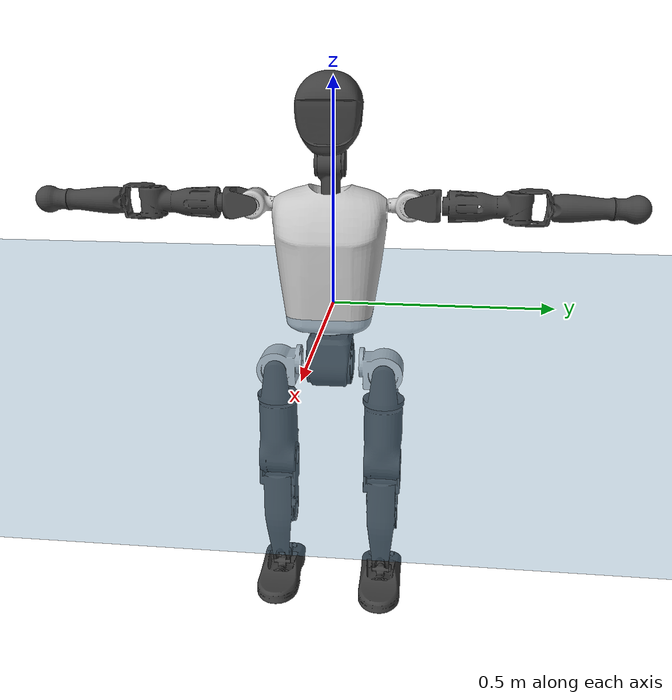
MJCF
<mujoco model="T1">
  <compiler angle="radian" assetdir="assets" balanceinertia="true" inertiafromgeom="false"/>

  <option timestep="0.005" density="1.2" viscosity="2e-05"/>

  <size nkey="1"/>

  <visual>
    <quality shadowsize="8192"/>
    <map shadowclip="0.5"/>
  </visual>

  <default>
    <default class="/">
      <joint armature="0.01" damping="0.01" frictionloss="0.1"/>
      <geom contype="0" conaffinity="0" group="1" solref="-1000 -80"/>
      <site size="0.01 0.005 0.005" group="5"/>
      <general forcelimited="true" biastype="affine" gainprm="25" biasprm="0 -25 -0.6"/>
      <default class="t1">
        <geom rgba="0.25 0.25 0.25 1"/>
        <default class="visual">
          <geom type="mesh" group="2"/>
        </default>
        <default class="collision">
          <geom group="3"/>
        </default>
        <default class="foot">
          <geom size="0.1115 0.05 0.015" type="box" condim="6" group="4" priority="1" solimp="0.015 1 0.015"/>
        </default>
        <default class="reward_collision_sphere">
          <geom group="5" rgba="1 0 0 1"/>
        </default>
      </default>
    </default>
  </default>

  <asset>
    <texture type="skybox" colorspace="auto" name="//unnamed_texture_0" builtin="gradient" rgb1="0.95 0.95 0.95" rgb2="0.95 0.95 0.95" width="100" height="600"/>
    <texture type="2d" colorspace="auto" name="texplane" builtin="checker" rgb1="0.345 0.575 0.748" rgb2="0.345 0.575 0.748" markrgb="1 1 1" width="512" height="512"/>
    <material name="MatPlane" class="/" texture="texplane" texuniform="true" texrepeat="2 2" specular="0.9"/>
    <mesh name="Trunk" class="/" file="Trunk.stl"/>
    <mesh name="H1" class="/" file="H1.stl"/>
    <mesh name="H2" class="/" file="H2.stl"/>
    <mesh name="AL1" class="/" file="AL1.stl"/>
    <mesh name="AL2" class="/" file="AL2.stl"/>
    <mesh name="AL3" class="/" file="AL3.stl"/>
    <mesh name="left_hand_link" class="/" file="left_hand_link.stl"/>
    <mesh name="AR1" class="/" file="AR1.stl"/>
    <mesh name="AR2" class="/" file="AR2.stl"/>
    <mesh name="AR3" class="/" file="AR3.stl"/>
    <mesh name="right_hand_link" class="/" file="right_hand_link.stl"/>
    <mesh name="Waist" class="/" file="Waist.stl"/>
    <mesh name="Hip_Pitch_Left" class="/" file="Hip_Pitch_Left.stl"/>
    <mesh name="Hip_Roll_Left" class="/" file="Hip_Roll_Left.stl"/>
    <mesh name="Hip_Yaw_Left" class="/" file="Hip_Yaw_Left.stl"/>
    <mesh name="Shank_Left" class="/" file="Shank_Left.stl"/>
    <mesh name="Ankle_Cross_Left" class="/" file="Ankle_Cross_Left.stl"/>
    <mesh name="left_foot_link" class="/" file="left_foot_link.stl"/>
    <mesh name="Hip_Pitch_Right" class="/" file="Hip_Pitch_Right.stl"/>
    <mesh name="Hip_Roll_Right" class="/" file="Hip_Roll_Right.stl"/>
    <mesh name="Hip_Yaw_Right" class="/" file="Hip_Yaw_Right.stl"/>
    <mesh name="Shank_Right" class="/" file="Shank_Right.stl"/>
    <mesh name="Ankle_Cross_Right" class="/" file="Ankle_Cross_Right.stl"/>
    <mesh name="right_foot_link" class="/" file="right_foot_link.stl"/>
  </asset>

  <worldbody>
    <geom name="floor" class="/" size="100 100 0.125" type="plane" group="0" material="MatPlane"/>
    <light name="toplight_shadow" class="/" pos="0 0 5" dir="0.0990148 0.0990148 -0.990148" type="directional" ambient="0.04 0.04 0.04" diffuse="0.55 0.55 0.55" specular="0.12 0.12 0.12"/>
    <light name="toplight_fill" class="/" pos="0 0 5" dir="0.0990148 0.0990148 -0.990148" type="directional" castshadow="false" ambient="0.04 0.04 0.04" diffuse="0.3 0.3 0.3" specular="0.08 0.08 0.08"/>
    <body name="trunk" childclass="t1" pos="-6.26089e-05 0.000410123 0.000204481" quat="1 1.06377e-05 -2.9633e-05 -2.2327e-06">
      <inertial pos="0.0405902 0.000510724 0.112201" quat="0.999932 0.00353553 -0.0111236 7.26303e-05" mass="11.6997" diaginertia="0.0233762 0.168308 0.0764407"/>
      <joint name="//unnamed_joint_0" type="free" armature="0" damping="0" frictionloss="0"/>
      <geom name="//unnamed_geom_1" class="visual" rgba="0.76 0.76 0.76 1" mesh="Trunk"/>
      <geom name="//unnamed_geom_2" class="collision" size="0.0747349 0.0996465 0.14947" pos="0.0455443 0 0.127654" type="box"/>
      <geom name="//unnamed_geom_3" class="reward_collision_sphere" size="0.114594" pos="0.0455443 0 0.106378"/>
      <geom name="//unnamed_geom_4" class="reward_collision_sphere" size="0.014947" pos="0.0455443 0.0991562 0"/>
      <geom name="//unnamed_geom_5" class="reward_collision_sphere" size="0.014947" pos="0.0455443 -0.0991562 0"/>
      <geom name="//unnamed_geom_6" class="reward_collision_sphere" size="0.014947" pos="0.0455443 0.12482 0.191481"/>
      <geom name="//unnamed_geom_7" class="reward_collision_sphere" size="0.014947" pos="0.0455443 -0.12482 0.191481"/>
      <site name="imu" pos="0.0046541 0.00418638 0.00125591" size="0.00996465"/>
      <camera name="track" pos="0 -2.33309 0" quat="0.707107 0.707107 0 0" mode="trackcom"/>
      <camera name="ego_camera" pos="0.0926067 0 0.446788" quat="-0.5 -0.5 0.5 0.5"/>
      <body name="H1" pos="0.047582 -0.000398651 0.258106" quat="1 -2.1019e-06 -6.59959e-06 -2.14928e-06">
        <inertial pos="-0.00124313 -0.000689257 0.0605739" quat="0.764063 -0.013849 0.00223449 0.644989" mass="0.443605" diaginertia="6.08051e-05 0.000486738 0.000205753"/>
        <joint name="AAHead_yaw" pos="0 0 0" axis="-0.0030392 0.000878583 0.999995" stiffness="0.00164983" range="-1.57136 1.5617" armature="0.0101075" damping="0.00740739" frictionloss="0.0929015"/>
        <geom name="//unnamed_geom_8" class="visual" mesh="H1"/>
        <body name="H2" pos="8.4595e-06 0.000274192 0.0656535" quat="1 -6.17996e-05 -0.000108999 2.92621e-06">
          <inertial pos="0.00574279 0.000534898 0.105054" quat="0.988826 0.103486 -0.0746098 -0.0771207" mass="0.621977" diaginertia="0.000513051 0.00414858 0.00232375"/>
          <joint name="Head_pitch" pos="0 0 0" axis="-0.00168622 -0.999998 -0.000925329" range="-1.215 0.350833" armature="0.00997808" damping="0.00644003" frictionloss="0.103811"/>
          <geom name="//unnamed_geom_9" class="visual" mesh="H2"/>
          <geom name="//unnamed_geom_10" class="collision" size="0.0797172" pos="0.00759072 0 0.117016"/>
          <geom name="//unnamed_geom_11" class="reward_collision_sphere" size="0.0896819" pos="0.0151814 0 0.106378"/>
        </body>
      </body>
      <body name="AL1" pos="0.045296 0.124424 0.23387" quat="1 0.000249335 0.000642557 8.53238e-05">
        <inertial pos="-0.000640335 0.0531334 0.00079658" quat="0.504966 0.494922 -0.506309 0.493674" mass="0.525736" diaginertia="0.000342714 0.00280872 0.000397332"/>
        <joint name="Left_Shoulder_Pitch" pos="0 0 0" axis="-0.000515559 0.999998 0.00179265" range="-3.2997 1.21975" armature="0.00997043" damping="0.012897" frictionloss="0.099569"/>
        <geom name="//unnamed_geom_12" class="visual" rgba="0.76 0.76 0.76 1" mesh="AL1"/>
        <body name="AL2" pos="0.000614677 0.0557506 0.000895498" quat="1 -9.0401e-05 3.48685e-05 0.00049605">
          <inertial pos="0.00339038 0.0451245 -0.00110771" quat="0.486878 0.509079 -0.493215 0.510418" mass="0.156334" diaginertia="0.000100687 0.000744119 0.000241245"/>
          <joint name="Left_Shoulder_Roll" pos="0 0 0" axis="-0.999999 0.0012454 0.000103308" range="-1.5726 1.7401" armature="0.0100286" damping="0.00259162" frictionloss="0.0972443"/>
          <geom name="//unnamed_geom_13" class="visual" mesh="AL2"/>
          <body name="AL3" pos="0.000758952 0.0723829 -0.00043753" quat="1 -1.45688e-05 -3.18538e-05 -2.36412e-05">
            <inertial pos="-0.000932869 0.0992394 0.000756128" quat="0.70869 0.705515 0.00102683 0.0022385" mass="1.00039" diaginertia="0.0032304 0.0277642 0.000845245"/>
            <joint name="Left_Elbow_Pitch" pos="0 0 0" axis="-0.00374221 -0.999993 0.000627624" range="-2.26453 2.27934" armature="0.00974824" damping="0.00771922" frictionloss="0.0996852"/>
            <geom name="//unnamed_geom_14" class="visual" mesh="AL3"/>
            <geom name="//unnamed_geom_15" class="collision" size="0.029894 0.0747349" pos="0 0.0583272 0" quat="0.707105 0.707108 0 0" type="cylinder"/>
            <geom name="//unnamed_geom_16" class="reward_collision_sphere" size="0.0358728"/>
            <body name="left_hand_link" pos="-0.000334871 0.172626 0.000123755" quat="1 -0.000223027 -4.09905e-05 0.000133855">
              <inertial pos="-0.000368738 0.127586 0.000324397" quat="0.707943 0.70627 0.000210328 5.80284e-05" mass="0.325625" diaginertia="0.00206022 0.0175987 0.000291412"/>
              <joint name="Left_Elbow_Yaw" pos="0 0 0" axis="-0.00228722 0.00204104 0.999995" range="-2.45564 0.00895557" armature="0.010068" damping="0.00400994" frictionloss="0.0979165"/>
              <geom name="//unnamed_geom_17" class="visual" mesh="left_hand_link"/>
              <geom name="//unnamed_geom_18" class="collision" size="0.029894 0.0871907" pos="0 0.151651 0" quat="0.707105 0.707108 0 0" type="cylinder"/>
              <geom name="//unnamed_geom_19" class="reward_collision_sphere" size="0.0498233"/>
              <geom name="//unnamed_geom_20" class="reward_collision_sphere" size="0.0348763" pos="0 0.12832 0"/>
              <geom name="//unnamed_geom_21" class="reward_collision_sphere" size="0.0348763" pos="0 0.250807 0"/>
            </body>
          </body>
        </body>
      </body>
      <body name="AR1" pos="0.0440603 -0.123206 0.233513" quat="1 4.60423e-05 0.000311948 0.000320949">
        <inertial pos="-0.000113222 -0.0526815 -0.000683801" quat="0.506197 0.495844 -0.504347 0.493496" mass="0.520629" diaginertia="0.000342391 0.0027443 0.000392299"/>
        <joint name="Right_Shoulder_Pitch" pos="0 0 0" axis="-0.00263545 -0.999992 0.00304197" range="-1.22428 3.30713" armature="0.0101034" damping="0.00462774" frictionloss="0.0953378"/>
        <geom name="//unnamed_geom_22" class="visual" rgba="0.76 0.76 0.76 1" mesh="AR1"/>
        <body name="AR2" pos="-0.00113285 -0.0544313 -0.000376405" quat="1 9.78726e-05 1.77495e-05 -0.000111404">
          <inertial pos="0.00382828 -0.0454236 0.000813129" quat="0.513642 0.486699 -0.512696 0.486248" mass="0.157477" diaginertia="9.94763e-05 0.000746495 0.000237009"/>
          <joint name="Right_Shoulder_Roll" pos="0 0 0" axis="-0.99998 0.0023028 0.00591478" range="-1.74306 1.56849" armature="0.0100199" damping="0.00197045" frictionloss="0.10085"/>
          <geom name="//unnamed_geom_23" class="visual" mesh="AR2"/>
          <body name="AR3" pos="0.000500609 -0.0713162 0.0003666" quat="1 0.000504631 -2.52148e-05 -0.000219378">
            <inertial pos="-0.000354789 -0.0995707 -0.000427015" quat="0.706669 0.707534 0.00390472 -0.000278232" mass="0.998854" diaginertia="0.00320739 0.0269843 0.000838942"/>
            <joint name="Right_Elbow_Pitch" pos="0 0 0" axis="-0.000122049 1 -0.000746698" range="-2.27883 2.26762" armature="0.00995193" damping="0.00787333" frictionloss="0.102144"/>
            <geom name="//unnamed_geom_24" class="visual" mesh="AR3"/>
            <geom name="//unnamed_geom_25" class="collision" size="0.029894 0.0747349" pos="0 -0.0583272 0" quat="0.707105 0.707108 0 0" type="cylinder"/>
            <geom name="//unnamed_geom_26" class="reward_collision_sphere" size="0.0358728"/>
            <body name="right_hand_link" pos="-0.00021922 -0.171106 0.000639385" quat="1 3.73363e-05 9.52757e-05 0.000324947">
              <inertial pos="0.000115303 -0.128375 0.000330803" quat="0.707798 0.706414 -0.000408985 0.000782742" mass="0.31962" diaginertia="0.00204429 0.0174567 0.000292436"/>
              <joint name="Right_Elbow_Yaw" pos="0 0 0" axis="0.000481364 0.0010264 0.999999" range="-0.0171744 2.43687" armature="0.00998088" damping="0.00654085" frictionloss="0.103077"/>
              <geom name="//unnamed_geom_27" class="visual" mesh="right_hand_link"/>
              <geom name="//unnamed_geom_28" class="collision" size="0.029894 0.0871907" pos="0 -0.151651 0" quat="0.707105 0.707108 0 0" type="cylinder"/>
              <geom name="//unnamed_geom_29" class="reward_collision_sphere" size="0.0498233"/>
              <geom name="//unnamed_geom_30" class="reward_collision_sphere" size="0.0348763" pos="0 -0.12832 0"/>
              <geom name="//unnamed_geom_31" class="reward_collision_sphere" size="0.0348763" pos="0 -0.250807 0"/>
            </body>
          </body>
        </body>
      </body>
      <body name="Waist" pos="0.0484135 -0.000897437 -0.124062" quat="1 0.000141009 3.58391e-05 -1.90177e-05">
        <inertial pos="0.000116047 -2.79888e-05 0.00836676" quat="0.983734 0.000696071 -0.179602 0.00327571" mass="2.60049" diaginertia="0.00134943 0.0116259 0.00650811"/>
        <joint name="Waist" pos="0 0 0" axis="0.00333935 0.000983039 0.999994" range="-1.55273 1.57446" armature="0.00962536" damping="0.0107716" frictionloss="0.100215"/>
        <geom name="//unnamed_geom_32" class="visual" mesh="Waist"/>
        <body name="Hip_Pitch_Left" pos="0.000545255 0.122855 -0.0012941" quat="1 -0.000184969 6.00172e-05 -8.90221e-05">
          <inertial pos="0.00051008 -0.00904287 -0.0201657" quat="0.975689 0.218394 0.018018 0.003241" mass="1.02185" diaginertia="0.000455719 0.00312979 0.00171211"/>
          <joint name="Left_Hip_Pitch" pos="0 0 0" axis="-0.000425174 0.999999 0.00145799" range="-1.80245 1.58291" armature="0.0104101" damping="0.00695429" frictionloss="0.0979239"/>
          <geom name="//unnamed_geom_33" class="visual" rgba="0.76 0.76 0.76 1" mesh="Hip_Pitch_Left"/>
          <body name="Hip_Roll_Left" pos="0.000559621 0.000856177 -0.0217938" quat="1 -4.38692e-05 6.32479e-05 6.96399e-05">
            <inertial pos="0.00206397 -1.14485e-05 -0.0580649" quat="0.706468 -0.00633876 -0.00155958 0.707715" mass="0.375327" diaginertia="0.00043843 0.00322619 0.000696884"/>
            <joint name="Left_Hip_Roll" pos="0 0 0" axis="-0.999998 -4.19877e-05 0.00178286" range="-1.57017 0.211322" armature="0.0102412" damping="0.0127944" frictionloss="0.104302"/>
            <geom name="//unnamed_geom_34" class="visual" mesh="Hip_Roll_Left"/>
            <geom name="//unnamed_geom_35" class="reward_collision_sphere" size="0.0548056"/>
            <body name="Hip_Yaw_Left" pos="0.00118823 0.000203081 -0.0869762" quat="1 0.000163611 -0.000200109 1.6254e-05">
              <inertial pos="-0.0051626 -0.000218897 -0.095501" quat="0.696313 -0.0343466 -0.0326122 0.716174" mass="2.1439" diaginertia="0.00650271 0.0542182 0.003543"/>
              <joint name="Left_Hip_Yaw" pos="0 0 0" axis="-0.000650539 0.000106501 -1" range="-0.985716 1.0139" armature="0.0100523" damping="0.0133072" frictionloss="0.0994112"/>
              <geom name="//unnamed_geom_36" class="visual" mesh="Hip_Yaw_Left"/>
              <geom name="//unnamed_geom_37" class="collision" size="0.0498233 0.0797172" type="cylinder"/>
              <body name="Shank_Left" pos="-0.0091405 -2.65063e-05 -0.144554" quat="1 8.46858e-06 7.771e-05 -2.12844e-05">
                <inertial pos="-0.00504377 0.000507338 -0.13216" quat="0.997573 0.00141936 -0.0239648 0.0653578" mass="1.68955" diaginertia="0.00875631 0.0745722 0.00254996"/>
                <joint name="Left_Knee_Pitch" pos="0 0 0" axis="-0.00415682 0.999991 -0.000843557" range="-0.0190203 2.35694" armature="0.0100572" damping="0.00918062" frictionloss="0.0977098"/>
                <geom name="//unnamed_geom_38" class="visual" mesh="Shank_Left"/>
                <geom name="//unnamed_geom_39" class="collision" size="0.0498233 0.0747349" pos="0 0 -0.127654" type="cylinder"/>
                <geom name="//unnamed_geom_40" class="reward_collision_sphere" size="0.0647702"/>
                <body name="Ankle_Cross_Left" pos="-0.000850838 -0.000409301 -0.29887" quat="1 -0.000112186 -0.000115719 0.000158636">
                  <inertial pos="-0.00197867 -0.000520511 -0.00944866" quat="0.441844 0.550998 0.552794 0.442261" mass="0.071785" diaginertia="7.29007e-06 5.59097e-05 1.5406e-05"/>
                  <joint name="Left_Ankle_Pitch" pos="0 0 0" axis="-0.000387186 1 0.000292155" range="-0.859516 0.358722" armature="0.0103784" damping="0.0117385" frictionloss="0.0995909"/>
                  <geom name="//unnamed_geom_41" class="visual" mesh="Ankle_Cross_Left"/>
                  <body name="left_foot_link" pos="-0.000962937 0.000602832 -0.0132585" quat="1 -0.000116888 4.95202e-05 -0.000403277">
                    <inertial pos="0.000346835 0.000113498 -0.00950227" quat="-0.000132186 0.620757 -0.00016667 0.784003" mass="0.674676" diaginertia="0.000675693 0.00508453 0.00302239"/>
                    <joint name="Left_Ankle_Roll" pos="0 0 0" axis="-0.999995 -0.00130061 0.00304585" range="-0.444431 0.439882" armature="0.00998757" damping="0.0123106" frictionloss="0.0998261"/>
                    <geom name="//unnamed_geom_42" class="visual" mesh="left_foot_link"/>
                    <geom name="left_foot" class="foot" size="0.105567 0.0507619 0.0155165" pos="0.00759072 0 -0.0159567"/>
                    <geom name="//unnamed_geom_44" class="reward_collision_sphere" size="0.0518162" pos="0.00759072 0 -0.0159567"/>
                    <geom name="//unnamed_geom_45" class="reward_collision_sphere" size="0.029894" pos="0.0721118 -0.0268305 -0.0159567"/>
                    <geom name="//unnamed_geom_46" class="reward_collision_sphere" size="0.029894" pos="-0.053135 -0.0268305 -0.0159567"/>
                    <site name="left_foot" class="foot" pos="0.00759072 0 -0.0159567" size="0.00996465"/>
                  </body>
                </body>
              </body>
            </body>
          </body>
        </body>
        <body name="Hip_Pitch_Right" pos="-0.0013277 -0.123663 -0.000615614" quat="1 4.2577e-05 4.3703e-05 1.58044e-05">
          <inertial pos="0.000721535 0.00892519 -0.0188673" quat="0.973498 -0.228201 0.0144666 -0.00406001" mass="1.00205" diaginertia="0.000450665 0.00312535 0.00165897"/>
          <joint name="Right_Hip_Pitch" pos="0 0 0" axis="0.00233241 -0.999997 -3.13388e-05" stiffness="0.00073426" range="-1.57058 1.77683" armature="0.0103552" damping="0.00776102" frictionloss="0.0988996"/>
          <geom name="//unnamed_geom_47" class="visual" rgba="0.76 0.76 0.76 1" mesh="Hip_Pitch_Right"/>
          <body name="Hip_Roll_Right" pos="0.000630278 -0.000308266 -0.020538" quat="1 0.000227859 2.40124e-06 -0.00033547">
            <inertial pos="0.000969239 -0.000428254 -0.0579337" quat="0.707645 -0.0097217 -0.00347128 0.706493" mass="0.381913" diaginertia="0.000438303 0.00327265 0.000700692"/>
            <joint name="Right_Hip_Roll" pos="0 0 0" axis="-0.999997 0.00225842 -0.000140368" range="-0.176131 1.56437" armature="0.00998391" damping="0.00683652" frictionloss="0.0950586"/>
            <geom name="//unnamed_geom_48" class="visual" mesh="Hip_Roll_Right"/>
            <geom name="//unnamed_geom_49" class="reward_collision_sphere" size="0.0548056"/>
            <body name="Hip_Yaw_Right" pos="-5.65279e-05 -0.000290084 -0.0869731" quat="1 7.25736e-05 -8.08503e-05 0.000111002">
              <inertial pos="-0.00501748 0.000459238 -0.0957046" quat="0.714594 -0.0323974 -0.0343327 0.697945" mass="2.16506" diaginertia="0.00648145 0.0542079 0.0035822"/>
              <joint name="Right_Hip_Yaw" pos="0 0 0" axis="-0.0105512 -0.00285262 -0.99994" range="-0.995264 1.01048" armature="0.00999966" damping="0.00226026" frictionloss="0.0996611"/>
              <geom name="//unnamed_geom_50" class="visual" mesh="Hip_Yaw_Right"/>
              <geom name="//unnamed_geom_51" class="collision" size="0.0498233 0.0797172" type="cylinder"/>
              <body name="Shank_Right" pos="-0.0106351 -0.000281134 -0.142184" quat="1 0.00048256 7.92377e-05 -8.45555e-05">
                <inertial pos="-0.00442994 -0.000143048 -0.130158" quat="0.999268 -0.000539251 -0.0230453 -0.0305231" mass="1.79664" diaginertia="0.00897858 0.0775466 0.00272884"/>
                <joint name="Right_Knee_Pitch" pos="0 0 0" axis="0.00739363 -0.999963 0.00437872" range="-2.33068 -0.00739816" armature="0.0104825" damping="0.00675384" frictionloss="0.0991403"/>
                <geom name="//unnamed_geom_52" class="visual" mesh="Shank_Right"/>
                <geom name="//unnamed_geom_53" class="collision" size="0.0498233 0.0747349" pos="0 0 -0.127654" type="cylinder"/>
                <geom name="//unnamed_geom_54" class="reward_collision_sphere" size="0.0647702"/>
                <body name="Ankle_Cross_Right" pos="0.000649966 -0.000265322 -0.298275" quat="1 -1.60567e-05 -2.55461e-05 -8.8917e-06">
                  <inertial pos="-0.00300357 0.000978892 -0.00847657" quat="0.442515 0.551603 0.552161 0.441625" mass="0.0714062" diaginertia="7.18808e-06 5.4458e-05 1.51991e-05"/>
                  <joint name="Right_Ankle_Pitch" pos="0 0 0" axis="0.00350955 -0.999994 0.000317924" range="-0.351064 0.865112" armature="0.00994152" damping="0.00906222" frictionloss="0.097463"/>
                  <geom name="//unnamed_geom_55" class="visual" mesh="Ankle_Cross_Right"/>
                  <body name="right_foot_link" pos="0.000716234 -0.00067231 -0.0119153" quat="1 -4.61559e-05 -6.39782e-06 -1.79013e-05">
                    <inertial pos="-0.00105003 -0.000395349 -0.00979089" quat="0.000307707 0.620812 -4.75938e-05 0.783959" mass="0.674914" diaginertia="0.000678786 0.00516504 0.00296395"/>
                    <joint name="Right_Ankle_Roll" pos="0 0 0" axis="-0.99999 0.00453556 -0.0004478" range="-0.454705 0.437859" armature="0.0101184" damping="0.00341491" frictionloss="0.101678"/>
                    <geom name="//unnamed_geom_56" class="visual" mesh="right_foot_link"/>
                    <geom name="right_foot" class="foot" size="0.101534 0.0492792 0.0155832" pos="0.00759072 0 -0.0159567"/>
                    <geom name="//unnamed_geom_58" class="reward_collision_sphere" size="0.0398586"/>
                    <geom name="//unnamed_geom_59" class="reward_collision_sphere" size="0.029894" pos="0.00759072 0 -0.0159567"/>
                    <geom name="//unnamed_geom_60" class="reward_collision_sphere" size="0.029894" pos="0.0721118 0.0268305 -0.0159567"/>
                    <geom name="//unnamed_geom_61" class="reward_collision_sphere" size="0.029894" pos="-0.053135 0.0268305 -0.0159567"/>
                    <site name="right_foot" class="foot" pos="0.00759072 0 -0.0159567" size="0.00996465"/>
                  </body>
                </body>
              </body>
            </body>
          </body>
        </body>
      </body>
    </body>
  </worldbody>

  <contact>
    <pair class="/" geom1="floor" geom2="left_foot" name="//unnamed_contact_0"/>
    <pair class="/" geom1="floor" geom2="right_foot" name="//unnamed_contact_1"/>
  </contact>

  <actuator>
    <general name="AAHead_yaw" class="/" joint="AAHead_yaw" forcerange="-7.00413 7.00413" gainprm="25.3039" biasprm="0 -25.3039 -0.582085"/>
    <general name="Head_pitch" class="/" joint="Head_pitch" forcerange="-6.95345 6.95345" gainprm="25.3039" biasprm="0 -25.3039 -0.582085"/>
    <general name="Left_Shoulder_Pitch" class="/" joint="Left_Shoulder_Pitch" forcerange="-18.4787 18.4787" gainprm="25.3039" biasprm="0 -25.3039 -0.582085"/>
    <general name="Left_Shoulder_Roll" class="/" joint="Left_Shoulder_Roll" forcerange="-17.9184 17.9184" gainprm="25.3039" biasprm="0 -25.3039 -0.582085"/>
    <general name="Left_Elbow_Pitch" class="/" joint="Left_Elbow_Pitch" forcerange="-17.9983 17.9983" gainprm="25.3039" biasprm="0 -25.3039 -0.582085"/>
    <general name="Left_Elbow_Yaw" class="/" joint="Left_Elbow_Yaw" forcerange="-18.1775 18.1775" gainprm="25.3039" biasprm="0 -25.3039 -0.582085"/>
    <general name="Right_Shoulder_Pitch" class="/" joint="Right_Shoulder_Pitch" forcerange="-17.8578 17.8578" gainprm="25.3039" biasprm="0 -25.3039 -0.582085"/>
    <general name="Right_Shoulder_Roll" class="/" joint="Right_Shoulder_Roll" forcerange="-18.5857 18.5857" gainprm="25.3039" biasprm="0 -25.3039 -0.582085"/>
    <general name="Right_Elbow_Pitch" class="/" joint="Right_Elbow_Pitch" forcerange="-18.3849 18.3849" gainprm="25.3039" biasprm="0 -25.3039 -0.582085"/>
    <general name="Right_Elbow_Yaw" class="/" joint="Right_Elbow_Yaw" forcerange="-17.6588 17.6588" gainprm="25.3039" biasprm="0 -25.3039 -0.582085"/>
    <general name="Waist" class="/" joint="Waist" forcerange="-29.336 29.336" gainprm="25.3039" biasprm="0 -25.3039 -0.582085"/>
    <general name="Left_Hip_Pitch" class="/" joint="Left_Hip_Pitch" forcerange="-44.4884 44.4884" gainprm="25.3039" biasprm="0 -25.3039 -0.582085"/>
    <general name="Left_Hip_Roll" class="/" joint="Left_Hip_Roll" forcerange="-29.3898 29.3898" gainprm="25.3039" biasprm="0 -25.3039 -0.582085"/>
    <general name="Left_Hip_Yaw" class="/" joint="Left_Hip_Yaw" forcerange="-30.1622 30.1622" gainprm="25.3039" biasprm="0 -25.3039 -0.582085"/>
    <general name="Left_Knee_Pitch" class="/" joint="Left_Knee_Pitch" forcerange="-60.2749 60.2749" gainprm="25.3039" biasprm="0 -25.3039 -0.582085"/>
    <general name="Left_Ankle_Pitch" class="/" joint="Left_Ankle_Pitch" forcerange="-19.7593 19.7593" gainprm="25.3039" biasprm="0 -25.3039 -0.582085"/>
    <general name="Left_Ankle_Roll" class="/" joint="Left_Ankle_Roll" forcerange="-15.0453 15.0453" gainprm="25.3039" biasprm="0 -25.3039 -0.582085"/>
    <general name="Right_Hip_Pitch" class="/" joint="Right_Hip_Pitch" forcerange="-44.819 44.819" gainprm="25.3039" biasprm="0 -25.3039 -0.582085"/>
    <general name="Right_Hip_Roll" class="/" joint="Right_Hip_Roll" forcerange="-30.0544 30.0544" gainprm="25.3039" biasprm="0 -25.3039 -0.582085"/>
    <general name="Right_Hip_Yaw" class="/" joint="Right_Hip_Yaw" forcerange="-30.8749 30.8749" gainprm="25.3039" biasprm="0 -25.3039 -0.582085"/>
    <general name="Right_Knee_Pitch" class="/" joint="Right_Knee_Pitch" forcerange="-59.5346 59.5346" gainprm="25.3039" biasprm="0 -25.3039 -0.582085"/>
    <general name="Right_Ankle_Pitch" class="/" joint="Right_Ankle_Pitch" forcerange="-19.5759 19.5759" gainprm="25.3039" biasprm="0 -25.3039 -0.582085"/>
    <general name="Right_Ankle_Roll" class="/" joint="Right_Ankle_Roll" forcerange="-15.4682 15.4682" gainprm="25.3039" biasprm="0 -25.3039 -0.582085"/>
  </actuator>

  <sensor>
    <gyro site="imu" name="imu_angular_velocity"/>
    <velocimeter site="imu" name="imu_linear_velocity"/>
    <framelinvel objtype="site" objname="left_foot" name="left_foot_global_linear_velocity"/>
    <framelinvel objtype="site" objname="right_foot" name="right_foot_global_linear_velocity"/>
  </sensor>

  <keyframe>
    <key name="home" qpos="0 0 0.6385 1 0 0 0 0 0 0 1.4 0 -0.4 0 -1.4 0 0.4 0 -0.4 0 0 0.8 -0.4 0 0.4 0 0 -0.8 0.4 0"/>
  </keyframe>
</mujoco>
